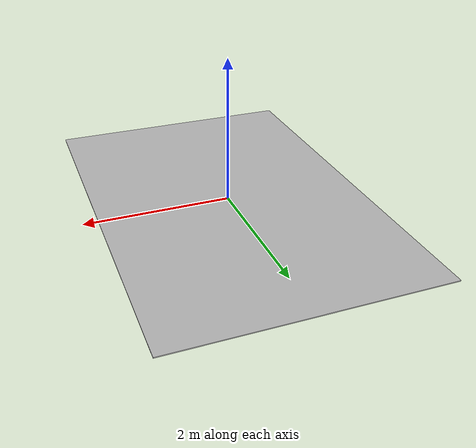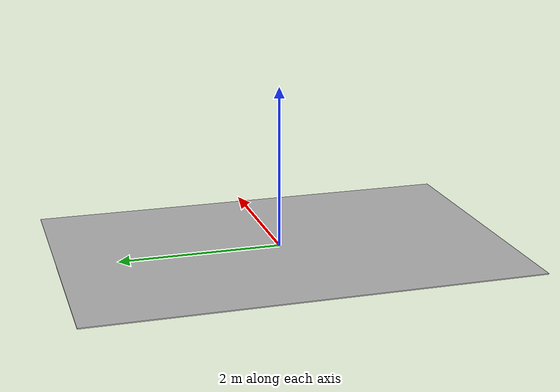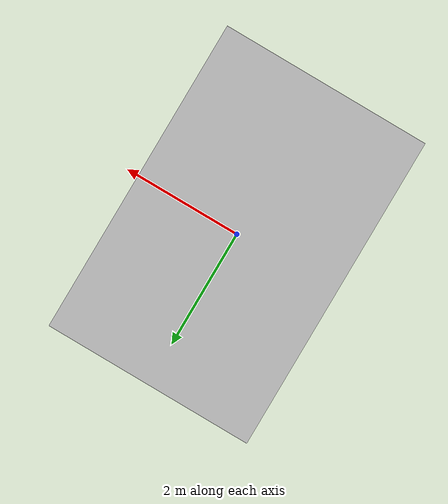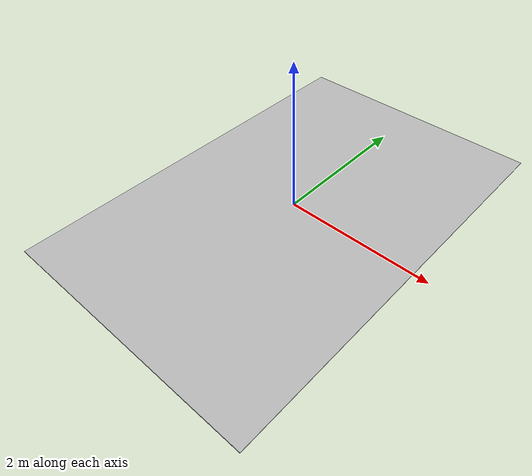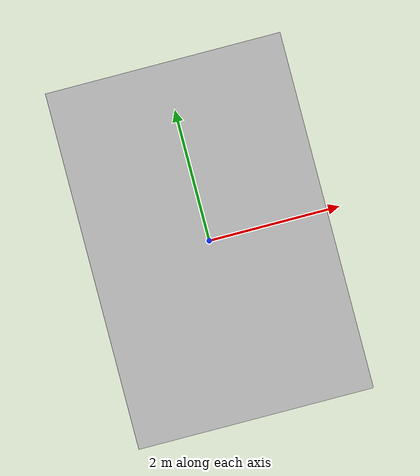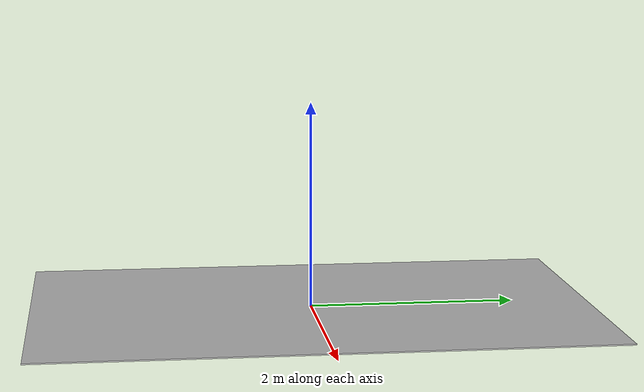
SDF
<?xml version="1.0"?>
<!--
	 SPDX-License-Identifier: GPL-3.0-only

	 Copyright (C) 2021  Haruki Shimotori. All right reserved.
-->

<sdf version="1.5">
	<model name="course">
		<static>true</static>
		<link name="course">
			<pose>0 0 0.006 0 0 0</pose>

			<collision name="collisio">
				<geometry>
					<box>
						<size>3.6 5.454 0.012</size>
					</box>
				</geometry>
			</collision>
			<visual name="visual">
				<geometry>
					<box>
						<size>3.6 5.454 0.012</size>
					</box>
				</geometry>
				<material>
					<script>
						<uri>model://robotracer_sdf/course/materials/course.material</uri>
						<name>course_texture</name>
					</script>
				</material>
			</visual>
		</link>
  </model>
</sdf>
